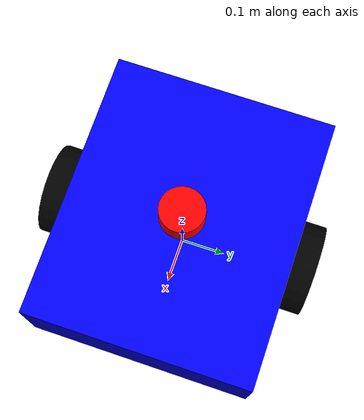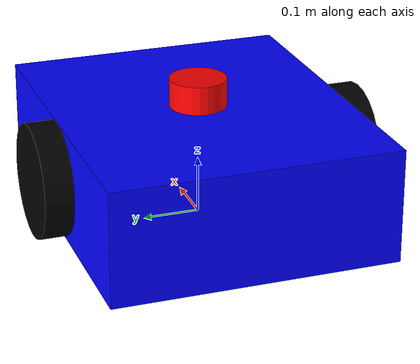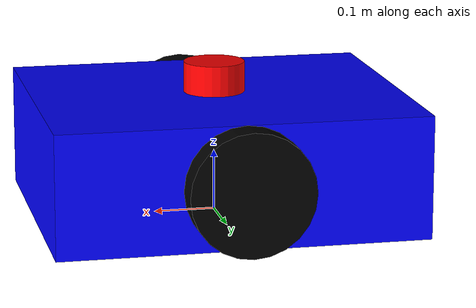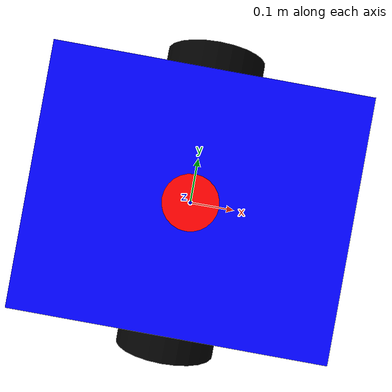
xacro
<?xml version="1.0"?>
<!--
  AMR Description (Xacro)
  Differential-drive mobile robot with parameterized prefix for multi-robot namespacing.
-->
<robot xmlns:xacro="http://www.ros.org/wiki/xacro" name="amr">
    <!-- IMPORTANT: Assumes robot_name is passed WITH a trailing slash from the launch file (e.g., 'amr1/') -->
    <xacro:arg name="robot_name" default=""/>

    <link name="$(arg robot_name)base_footprint"/>

    <joint name="$(arg robot_name)base_joint" type="fixed">
        <parent link="$(arg robot_name)base_footprint"/>
        <child link="$(arg robot_name)base_link"/>
        <origin xyz="0 0 0.1" rpy="0 0 0"/>
    </joint>

    <link name="$(arg robot_name)base_link">
        <visual>
            <geometry>
                <box size="0.6 0.5 0.2"/>
            </geometry>
            <material name="blue">
                <color rgba="0 0 1 1"/>
            </material>
        </visual>
        <collision>
            <geometry>
                <box size="0.6 0.5 0.2"/>
            </geometry>
        </collision>
        <inertial>
            <!-- FIX: Shifted Center of Mass forward by 0.1m to prevent backward tipping -->
            <origin xyz="0.1 0 0" rpy="0 0 0"/>
            <mass value="10.0"/>
            <inertia ixx="0.24" ixy="0" ixz="0" iyy="0.33" iyz="0" izz="0.5"/>
        </inertial>
    </link>

    <!-- Wheels -->
    <xacro:macro name="wheel" params="side y_reflect">
        <link name="$(arg robot_name)${side}_wheel">
            <visual>
                <geometry>
                    <cylinder radius="0.1" length="0.05"/>
                </geometry>
                <material name="black">
                    <color rgba="0 0 0 1"/>
                </material>
            </visual>
            <collision>
                <geometry>
                    <cylinder radius="0.1" length="0.05"/>
                </geometry>
            </collision>
            <inertial>
                <mass value="1.0"/>
                <inertia ixx="0.0027" ixy="0" ixz="0" iyy="0.0027" iyz="0" izz="0.005"/>
            </inertial>
        </link>
        <joint name="$(arg robot_name)${side}_wheel_joint" type="continuous">
            <parent link="$(arg robot_name)base_link"/>
            <child link="$(arg robot_name)${side}_wheel"/>
            <origin xyz="0 ${y_reflect * 0.275} 0" rpy="-1.570796 0 0"/>
            <axis xyz="0 0 1"/>
        </joint>
    </xacro:macro>

    <xacro:wheel side="left" y_reflect="1"/>
    <xacro:wheel side="right" y_reflect="-1"/>

    <!-- Front Caster wheel -->
    <link name="$(arg robot_name)caster_wheel">
        <visual>
            <geometry>
                <sphere radius="0.05"/>
            </geometry>
            <material name="black"/>
        </visual>
        <collision>
            <geometry>
                <sphere radius="0.05"/>
            </geometry>
        </collision>
        <inertial>
            <mass value="0.5"/>
            <inertia ixx="0.0005" ixy="0" ixz="0" iyy="0.0005" iyz="0" izz="0.0005"/>
        </inertial>
    </link>
    <joint name="$(arg robot_name)caster_joint" type="fixed">
        <parent link="$(arg robot_name)base_link"/>
        <child link="$(arg robot_name)caster_wheel"/>
        <origin xyz="0.2 0 -0.05" rpy="0 0 0"/>
    </joint>

    <!-- Lidar -->
    <link name="$(arg robot_name)lidar_link">
        <visual>
            <geometry>
                <cylinder radius="0.05" length="0.05"/>
            </geometry>
            <material name="red">
                <color rgba="1 0 0 1"/>
            </material>
        </visual>
        <inertial>
            <mass value="0.1"/>
            <inertia ixx="0.0001" ixy="0" ixz="0" iyy="0.0001" iyz="0" izz="0.0001"/>
        </inertial>
    </link>
    <joint name="$(arg robot_name)lidar_joint" type="fixed">
        <parent link="$(arg robot_name)base_link"/>
        <child link="$(arg robot_name)lidar_link"/>
        <origin xyz="0 0 0.125" rpy="0 0 0"/>
    </joint>

    <gazebo reference="$(arg robot_name)lidar_link">
        <sensor name="lidar" type="gpu_lidar">
            <always_on>true</always_on>
            <visualize>true</visualize>
            <update_rate>10</update_rate>
            <topic>/$(arg robot_name)scan</topic>
            <gz_frame_id>$(arg robot_name)lidar_link</gz_frame_id>
            <!-- FIX: Added explicit ROS 2 frame ID -->
            <frame_id>$(arg robot_name)lidar_link</frame_id>
            <ray>
                <scan>
                    <horizontal>
                        <samples>360</samples>
                        <resolution>1</resolution>
                        <min_angle>-3.14159</min_angle>
                        <max_angle>3.14159</max_angle>
                    </horizontal>
                </scan>
                <range>
                    <min>0.12</min>
                    <max>10.0</max>
                    <resolution>0.015</resolution>
                </range>
                <noise>
                    <type>gaussian</type>
                    <mean>0.0</mean>
                    <stddev>0.01</stddev>
                </noise>
            </ray>
        </sensor>
    </gazebo>

    <gazebo reference="$(arg robot_name)caster_wheel">
        <!-- FIX: Corrected Gazebo SDF friction parameter syntax -->
        <mu1>0.001</mu1>
        <mu2>0.001</mu2>
    </gazebo>

    <gazebo>
        <plugin filename="gz-sim-diff-drive-system" name="gz::sim::systems::DiffDrive">
            <left_joint>$(arg robot_name)left_wheel_joint</left_joint>
            <right_joint>$(arg robot_name)right_wheel_joint</right_joint>
            <wheel_separation>0.55</wheel_separation>
            <wheel_radius>0.1</wheel_radius>
            <odom_publish_frequency>50</odom_publish_frequency>
            <topic>/$(arg robot_name)cmd_vel</topic>
            <odom_topic>/$(arg robot_name)odom</odom_topic>
            <tf_topic>/$(arg robot_name)tf</tf_topic>
            <frame_id>$(arg robot_name)odom</frame_id>
            <child_frame_id>$(arg robot_name)base_footprint</child_frame_id>
        </plugin>

        <plugin filename="gz-sim-joint-state-publisher-system" name="gz::sim::systems::JointStatePublisher">
            <topic>/$(arg robot_name)joint_states</topic>
        </plugin>
    </gazebo>
</robot>
